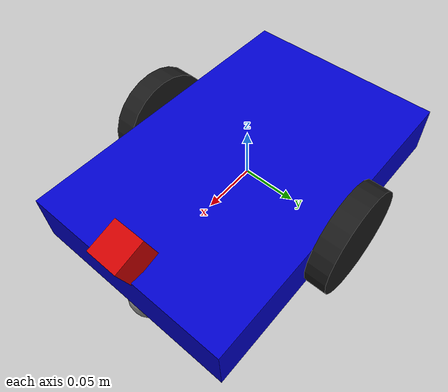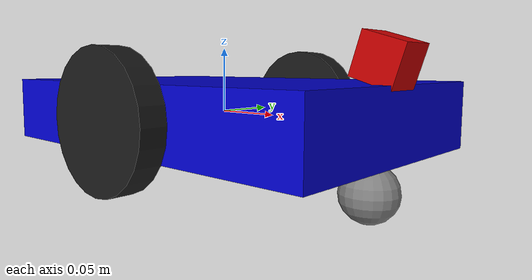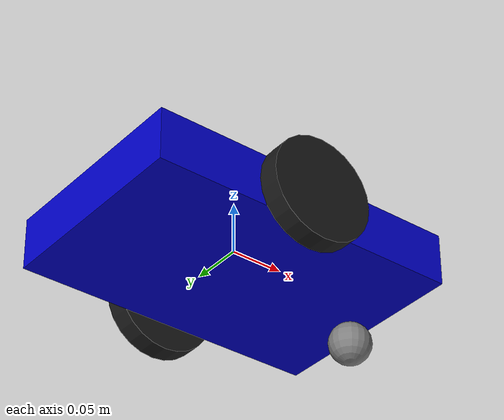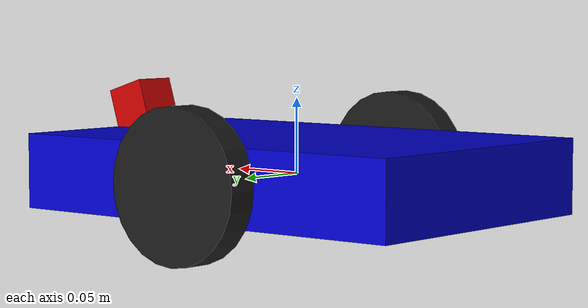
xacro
<?xml version="1.0"?>
<robot xmlns:xacro="http://www.ros.org/wiki/xacro" name="line_follower">

<!-- Robot dimensions -->
<xacro:property name="chassis_length" value="0.30"/>
<xacro:property name="chassis_width"  value="0.20"/>
<xacro:property name="chassis_height" value="0.05"/>
<xacro:property name="chassis_mass"   value="1.0"/>

<!-- Wheel dimensions -->
<xacro:property name="wheel_radius" value="0.05"/>
<xacro:property name="wheel_width"  value="0.02"/>
<xacro:property name="wheel_mass"   value="0.1"/>
<xacro:property name="wheel_separation" value="0.22"/>

<!-- Caster dimensions -->
<xacro:property name="caster_radius" value="0.02"/>
<xacro:property name="caster_mass"   value="0.05"/>

<!-- Inertia macros -->
<xacro:macro name="box_inertia" params="m l w h">
    <inertial>
      <mass value="${m}"/>
      <inertia
        ixx="${m*(h*h+w*w)/12}" ixy="0" ixz="0"
        iyy="${m*(l*l+h*h)/12}" iyz="0"
        izz="${m*(l*l+w*w)/12}"/>
      </inertial>
    </xacro:macro>

<xacro:macro name="cylinder_inertia" params="m r h">
    <inertial>
      <mass value="${m}"/>
      <inertia
        ixx="${m*(3*r*r+h*h)/12}" ixy="0" ixz="0"
        iyy="${m*(3*r*r+h*h)/12}" iyz="0"
        izz="${m*r*r/2}"/>
      </inertial>
</xacro:macro>

<!-- Base link -->
<link name="base_link">
    <visual>
      <geometry>
        <box size="${chassis_length} ${chassis_width} ${chassis_height}"/>
      </geometry>
      <material name="blue">
        <color rgba="0.0 0.0 0.8 1.0"/>
      </material>
    </visual>
    <collision>
      <geometry>
        <box size="${chassis_length} ${chassis_width} ${chassis_height}"/>
      </geometry>
    </collision>
    <xacro:box_inertia
      m="${chassis_mass}"
      l="${chassis_length}"
      w="${chassis_width}"
      h="${chassis_height}"/>
  </link>

<!-- Wheel macro -->
<xacro:macro name="wheel" params="name y_reflect">
    <link name="${name}_wheel">
      <visual>
        <geometry>
          <cylinder radius="${wheel_radius}" length="${wheel_width}"/>
        </geometry>
        <material name="black">
          <color rgba="0.1 0.1 0.1 1.0"/>
        </material>
      </visual>
      <collision>
        <geometry>
          <cylinder radius="${wheel_radius}" length="${wheel_width}"/>
        </geometry>
      </collision>
      <xacro:cylinder_inertia
        m="${wheel_mass}"
        r="${wheel_radius}"
        h="${wheel_width}"/>
    </link>

    <joint name="${name}_wheel_joint" type="continuous">
      <parent link="base_link"/>
      <child link="${name}_wheel"/>
      <origin xyz="0 ${y_reflect * wheel_separation/2} 0"
              rpy="${pi/2} 0 0"/>
      <axis xyz="0 0 -1"/>
    </joint>
</xacro:macro>

<!-- Instantiate wheels -->
<xacro:wheel name="left"  y_reflect="1"/>
<xacro:wheel name="right" y_reflect="-1"/>

<!-- Caster wheel -->
<link name="caster_wheel">
    <visual>
      <geometry>
        <sphere radius="${caster_radius}"/>
      </geometry>
      <material name="gray">
        <color rgba="0.5 0.5 0.5 1.0"/>
      </material>
    </visual>
    <collision>
      <geometry>
        <sphere radius="${caster_radius}"/>
      </geometry>
    </collision>
    <inertial>
      <mass value="${caster_mass}"/>
      <inertia ixx="0.0" ixy="0.0" ixz="0.0"
               iyy="0.0" iyz="0.0" izz="0.0"/>
    </inertial>
  </link>

  <joint name="caster_joint" type="fixed">
    <parent link="base_link"/>
    <child link="caster_wheel"/>
    <origin xyz="${chassis_length/2 - caster_radius} 0
                 ${-chassis_height/2 - caster_radius}"
            rpy="0 0 0"/>
</joint>

<!-- Camera link -->
<link name="camera_link">
    <visual>
      <geometry>
        <box size="0.03 0.03 0.03"/>
      </geometry>
      <material name="red">
        <color rgba="0.8 0.0 0.0 1.0"/>
      </material>
    </visual>
    <collision>
      <geometry>
        <box size="0.03 0.03 0.03"/>
      </geometry>
    </collision>
    <inertial>
      <mass value="0.05"/>
      <inertia ixx="0.0" ixy="0.0" ixz="0.0"
               iyy="0.0" iyz="0.0" izz="0.0"/>
    </inertial>
</link>

<joint name="camera_joint" type="fixed">
    <parent link="base_link"/>
    <child link="camera_link"/>
    <origin xyz="${chassis_length/2 - 0.01} 0
                 ${chassis_height/2 + 0.015}"
            rpy="0 0.3 0"/>
</joint>

  <!-- Camera optical frame -->
<link name="camera_optical_frame"/>

<joint name="camera_optical_joint" type="fixed">
    <parent link="camera_link"/>
    <child link="camera_optical_frame"/>
    <origin xyz="0 0 0" rpy="${-pi/2} 0 ${-pi/2}"/>
</joint>

<!-- Gazebo camera sensor -->
<gazebo reference="camera_link">
    <sensor type="camera" name="camera">
      <update_rate>30.0</update_rate>
      <camera name="head">
        <horizontal_fov>1.3962634</horizontal_fov>
        <image>
          <width>640</width>
          <height>480</height>
          <format>R8G8B8</format>
        </image>
        <clip>
          <near>0.02</near>
          <far>300</far>
        </clip>
      </camera>
      <plugin name="camera_controller"
              filename="libgazebo_ros_camera.so">
        <alwaysOn>true</alwaysOn>
        <updateRate>30.0</updateRate>
        <cameraName>camera</cameraName>
        <imageTopicName>image_raw</imageTopicName>
        <cameraInfoTopicName>camera_info</cameraInfoTopicName>
        <frameName>camera_optical_frame</frameName>
      </plugin>
    </sensor>
</gazebo>

<gazebo>
    <plugin name="diff_drive" filename="libgazebo_ros_diff_drive.so">
      <left_joint>left_wheel_joint</left_joint>
      <right_joint>right_wheel_joint</right_joint>
      <wheel_separation>0.22</wheel_separation>
      <wheel_diameter>0.10</wheel_diameter>
      <command_topic>cmd_vel</command_topic>
      <publish_odom>true</publish_odom>
      <robot_base_frame>base_link</robot_base_frame>
    </plugin>
  </gazebo>

</robot>
